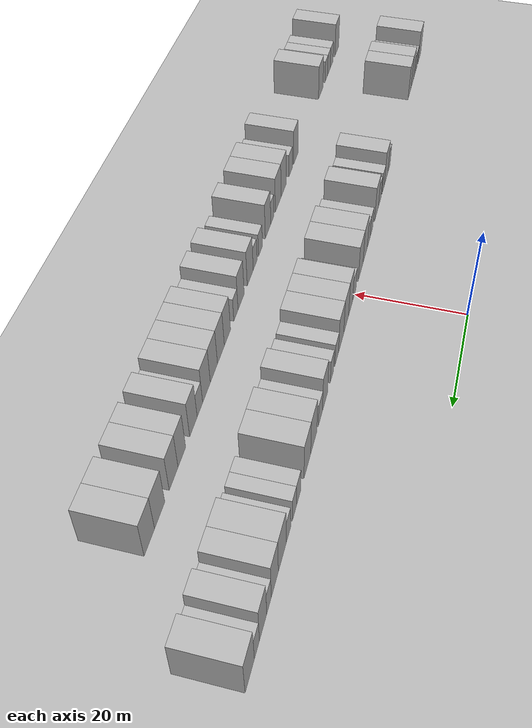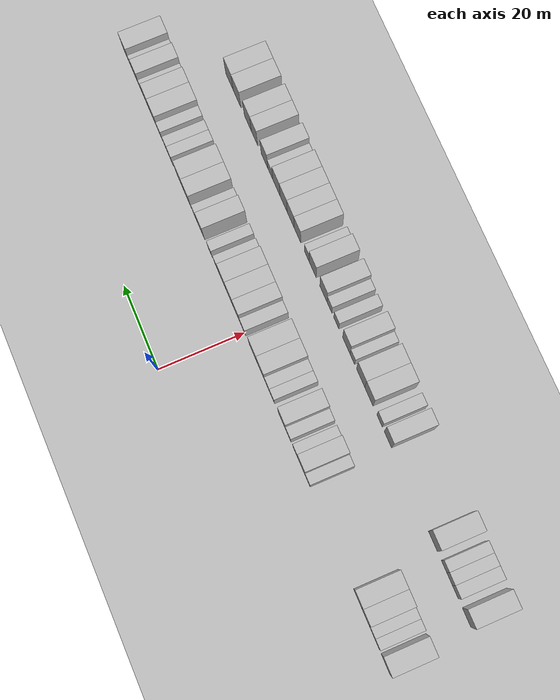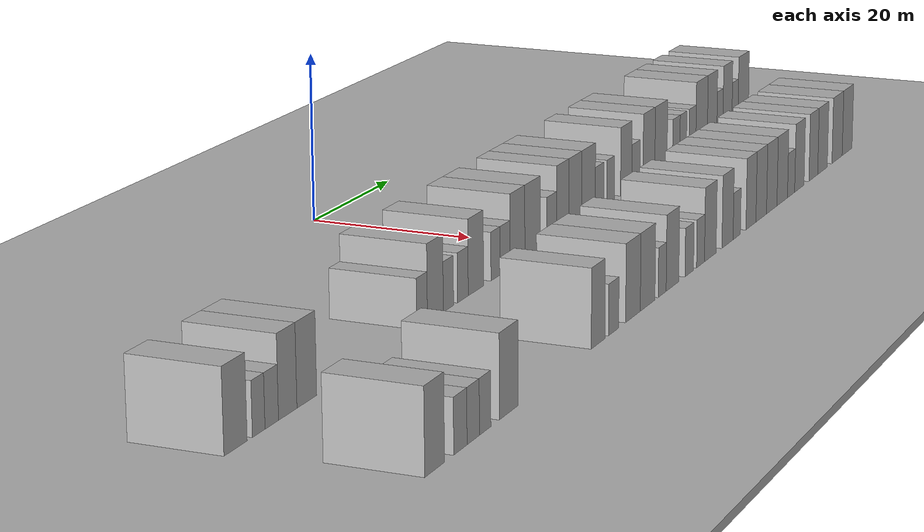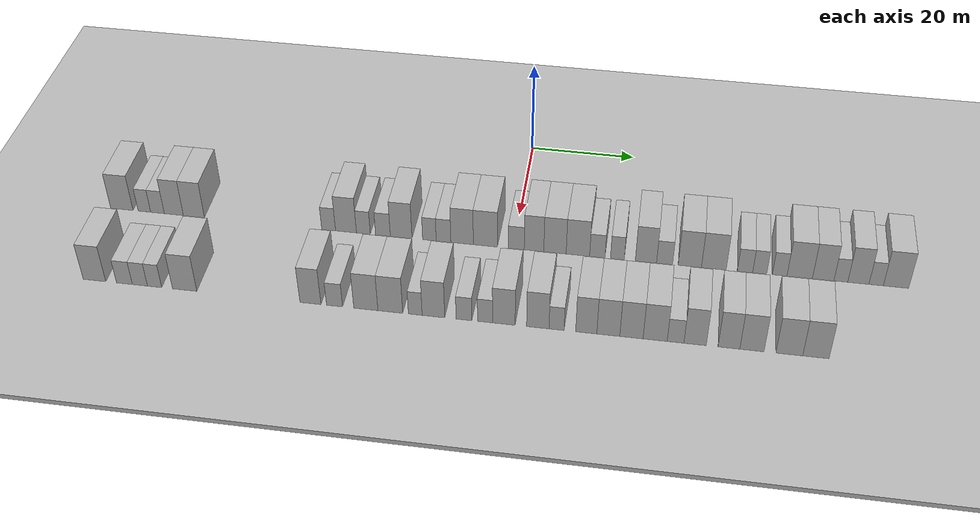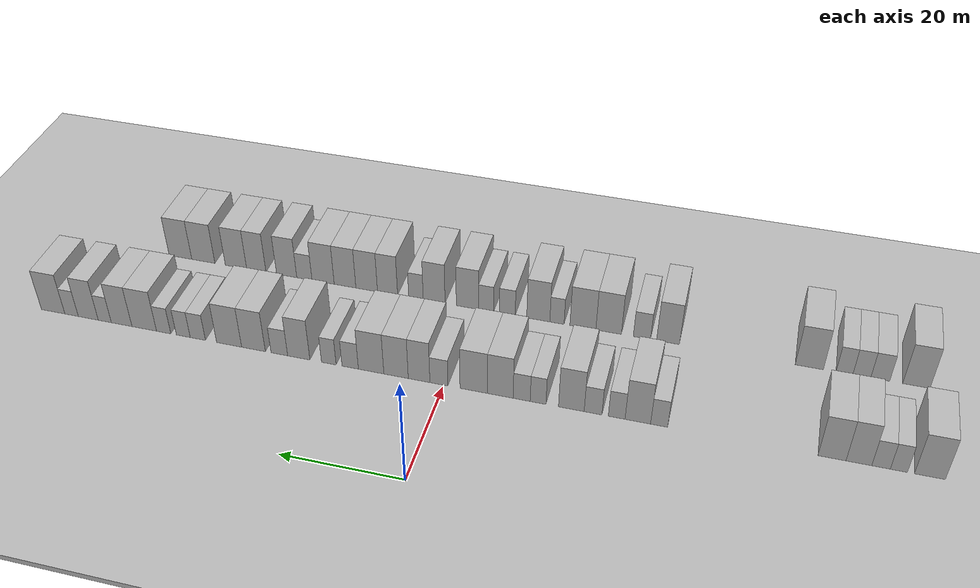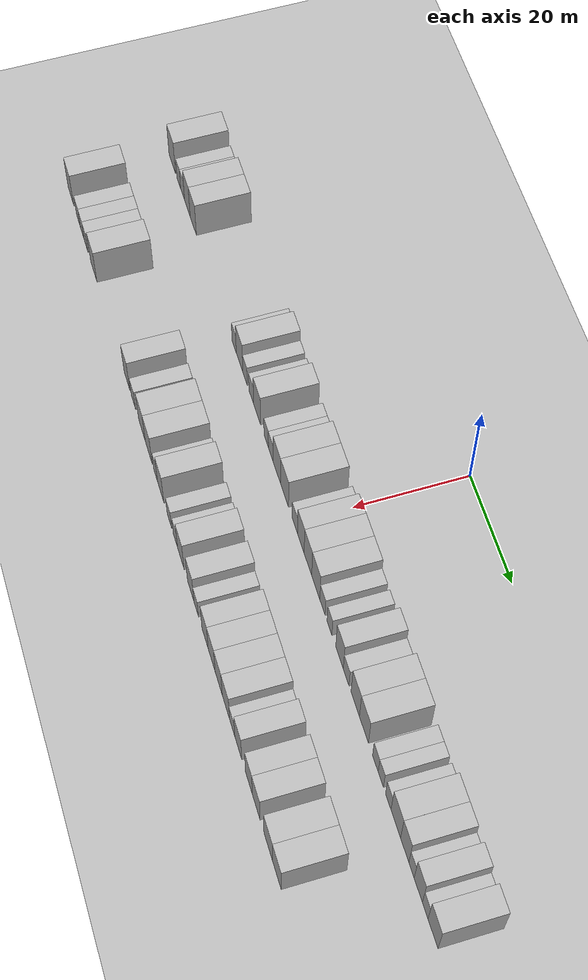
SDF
<sdf version="1.6">
 <world name="default">
  <include><name>ground_plane_1</name><uri>model://HANNAS_ground_plane</uri></include>
  <include>
   <name>ground_plane_2</name>
   <uri>model://HANNAS_ground_plane</uri>
   <pose>100 0 0  0 0 0</pose>
  </include>
  <model name="building_26">
   <static>1</static>
   <pose>25.0000 -74.6427 0 0.000000 0.000000 0.000000</pose>
   <link name="link">
    <pose>0 0 4.50 0 0 0</pose>
    <collision name="collision"><geometry><box><size>10.0000 4.3952 9.0000</size></box></geometry></collision>
    <visual name="visual">
     <cast_shadows>0</cast_shadows>
     <geometry><box><size>10.0000 4.3952 9.0000</size></box></geometry>
     <material>
      <script>
       <uri>model://HANNAS_wall/materials/scripts</uri>
       <uri>model://HANNAS_wall/materials/textures</uri>
       <name>vrc/HANNAS_wall</name>
      </script>
     </material>
    </visual>
   </link>
  </model>
  <model name="building_27">
   <static>1</static>
   <pose>25.0000 -70.2161 0 0.000000 0.000000 0.000000</pose>
   <link name="link">
    <pose>0 0 3.00 0 0 0</pose>
    <collision name="collision"><geometry><box><size>10.0000 2.4581 6.0000</size></box></geometry></collision>
    <visual name="visual">
     <cast_shadows>0</cast_shadows>
     <geometry><box><size>10.0000 2.4581 6.0000</size></box></geometry>
     <material>
      <script>
       <uri>model://HANNAS_wall/materials/scripts</uri>
       <uri>model://HANNAS_wall/materials/textures</uri>
       <name>vrc/HANNAS_wall</name>
      </script>
     </material>
    </visual>
   </link>
  </model>
  <model name="building_28">
   <static>1</static>
   <pose>25.0000 -67.6482 0 0.000000 0.000000 0.000000</pose>
   <link name="link">
    <pose>0 0 3.00 0 0 0</pose>
    <collision name="collision"><geometry><box><size>10.0000 2.6778 6.0000</size></box></geometry></collision>
    <visual name="visual">
     <cast_shadows>0</cast_shadows>
     <geometry><box><size>10.0000 2.6778 6.0000</size></box></geometry>
     <material>
      <script>
       <uri>model://HANNAS_wall/materials/scripts</uri>
       <uri>model://HANNAS_wall/materials/textures</uri>
       <name>vrc/HANNAS_wall</name>
      </script>
     </material>
    </visual>
   </link>
  </model>
  <model name="building_29">
   <static>1</static>
   <pose>25.0000 -64.4440 0 0.000000 0.000000 0.000000</pose>
   <link name="link">
    <pose>0 0 4.50 0 0 0</pose>
    <collision name="collision"><geometry><box><size>10.0000 3.7306 9.0000</size></box></geometry></collision>
    <visual name="visual">
     <cast_shadows>0</cast_shadows>
     <geometry><box><size>10.0000 3.7306 9.0000</size></box></geometry>
     <material>
      <script>
       <uri>model://HANNAS_wall/materials/scripts</uri>
       <uri>model://HANNAS_wall/materials/textures</uri>
       <name>vrc/HANNAS_wall</name>
      </script>
     </material>
    </visual>
   </link>
  </model>
  <model name="building_30">
   <static>1</static>
   <pose>25.0000 -60.5263 0 0.000000 0.000000 0.000000</pose>
   <link name="link">
    <pose>0 0 4.50 0 0 0</pose>
    <collision name="collision"><geometry><box><size>10.0000 4.1048 9.0000</size></box></geometry></collision>
    <visual name="visual">
     <cast_shadows>0</cast_shadows>
     <geometry><box><size>10.0000 4.1048 9.0000</size></box></geometry>
     <material>
      <script>
       <uri>model://HANNAS_wall/materials/scripts</uri>
       <uri>model://HANNAS_wall/materials/textures</uri>
       <name>vrc/HANNAS_wall</name>
      </script>
     </material>
    </visual>
   </link>
  </model>
  <model name="building_31">
   <static>1</static>
   <pose>25.0000 -34.5315 0 0.000000 0.000000 0.000000</pose>
   <link name="link">
    <pose>0 0 3.00 0 0 0</pose>
    <collision name="collision"><geometry><box><size>10.0000 2.6283 6.0000</size></box></geometry></collision>
    <visual name="visual">
     <cast_shadows>0</cast_shadows>
     <geometry><box><size>10.0000 2.6283 6.0000</size></box></geometry>
     <material>
      <script>
       <uri>model://HANNAS_wall/materials/scripts</uri>
       <uri>model://HANNAS_wall/materials/textures</uri>
       <name>vrc/HANNAS_wall</name>
      </script>
     </material>
    </visual>
   </link>
  </model>
  <model name="building_32">
   <static>1</static>
   <pose>25.0000 -31.2306 0 0.000000 0.000000 0.000000</pose>
   <link name="link">
    <pose>0 0 4.50 0 0 0</pose>
    <collision name="collision"><geometry><box><size>10.0000 3.9736 9.0000</size></box></geometry></collision>
    <visual name="visual">
     <cast_shadows>0</cast_shadows>
     <geometry><box><size>10.0000 3.9736 9.0000</size></box></geometry>
     <material>
      <script>
       <uri>model://HANNAS_wall/materials/scripts</uri>
       <uri>model://HANNAS_wall/materials/textures</uri>
       <name>vrc/HANNAS_wall</name>
      </script>
     </material>
    </visual>
   </link>
  </model>
  <model name="building_33">
   <static>1</static>
   <pose>25.0000 -27.9346 0 0.000000 0.000000 0.000000</pose>
   <link name="link">
    <pose>0 0 3.00 0 0 0</pose>
    <collision name="collision"><geometry><box><size>10.0000 2.6184 6.0000</size></box></geometry></collision>
    <visual name="visual">
     <cast_shadows>0</cast_shadows>
     <geometry><box><size>10.0000 2.6184 6.0000</size></box></geometry>
     <material>
      <script>
       <uri>model://HANNAS_wall/materials/scripts</uri>
       <uri>model://HANNAS_wall/materials/textures</uri>
       <name>vrc/HANNAS_wall</name>
      </script>
     </material>
    </visual>
   </link>
  </model>
  <model name="building_34">
   <static>1</static>
   <pose>25.0000 -24.2258 0 0.000000 0.000000 0.000000</pose>
   <link name="link">
    <pose>0 0 3.00 0 0 0</pose>
    <collision name="collision"><geometry><box><size>10.0000 2.7991 6.0000</size></box></geometry></collision>
    <visual name="visual">
     <cast_shadows>0</cast_shadows>
     <geometry><box><size>10.0000 2.7991 6.0000</size></box></geometry>
     <material>
      <script>
       <uri>model://HANNAS_wall/materials/scripts</uri>
       <uri>model://HANNAS_wall/materials/textures</uri>
       <name>vrc/HANNAS_wall</name>
      </script>
     </material>
    </visual>
   </link>
  </model>
  <model name="building_35">
   <static>1</static>
   <pose>25.0000 -20.7856 0 0.000000 0.000000 0.000000</pose>
   <link name="link">
    <pose>0 0 4.50 0 0 0</pose>
    <collision name="collision"><geometry><box><size>10.0000 4.0813 9.0000</size></box></geometry></collision>
    <visual name="visual">
     <cast_shadows>0</cast_shadows>
     <geometry><box><size>10.0000 4.0813 9.0000</size></box></geometry>
     <material>
      <script>
       <uri>model://HANNAS_wall/materials/scripts</uri>
       <uri>model://HANNAS_wall/materials/textures</uri>
       <name>vrc/HANNAS_wall</name>
      </script>
     </material>
    </visual>
   </link>
  </model>
  <model name="building_36">
   <static>1</static>
   <pose>25.0000 -15.4775 0 0.000000 0.000000 0.000000</pose>
   <link name="link">
    <pose>0 0 3.00 0 0 0</pose>
    <collision name="collision"><geometry><box><size>10.0000 2.5350 6.0000</size></box></geometry></collision>
    <visual name="visual">
     <cast_shadows>0</cast_shadows>
     <geometry><box><size>10.0000 2.5350 6.0000</size></box></geometry>
     <material>
      <script>
       <uri>model://HANNAS_wall/materials/scripts</uri>
       <uri>model://HANNAS_wall/materials/textures</uri>
       <name>vrc/HANNAS_wall</name>
      </script>
     </material>
    </visual>
   </link>
  </model>
  <model name="building_37">
   <static>1</static>
   <pose>25.0000 -12.8345 0 0.000000 0.000000 0.000000</pose>
   <link name="link">
    <pose>0 0 3.00 0 0 0</pose>
    <collision name="collision"><geometry><box><size>10.0000 2.7509 6.0000</size></box></geometry></collision>
    <visual name="visual">
     <cast_shadows>0</cast_shadows>
     <geometry><box><size>10.0000 2.7509 6.0000</size></box></geometry>
     <material>
      <script>
       <uri>model://HANNAS_wall/materials/scripts</uri>
       <uri>model://HANNAS_wall/materials/textures</uri>
       <name>vrc/HANNAS_wall</name>
      </script>
     </material>
    </visual>
   </link>
  </model>
  <model name="building_38">
   <static>1</static>
   <pose>25.0000 -9.3605 0 0.000000 0.000000 0.000000</pose>
   <link name="link">
    <pose>0 0 4.50 0 0 0</pose>
    <collision name="collision"><geometry><box><size>10.0000 4.1972 9.0000</size></box></geometry></collision>
    <visual name="visual">
     <cast_shadows>0</cast_shadows>
     <geometry><box><size>10.0000 4.1972 9.0000</size></box></geometry>
     <material>
      <script>
       <uri>model://HANNAS_wall/materials/scripts</uri>
       <uri>model://HANNAS_wall/materials/textures</uri>
       <name>vrc/HANNAS_wall</name>
      </script>
     </material>
    </visual>
   </link>
  </model>
  <model name="building_39">
   <static>1</static>
   <pose>25.0000 -5.0282 0 0.000000 0.000000 0.000000</pose>
   <link name="link">
    <pose>0 0 4.50 0 0 0</pose>
    <collision name="collision"><geometry><box><size>10.0000 4.4674 9.0000</size></box></geometry></collision>
    <visual name="visual">
     <cast_shadows>0</cast_shadows>
     <geometry><box><size>10.0000 4.4674 9.0000</size></box></geometry>
     <material>
      <script>
       <uri>model://HANNAS_wall/materials/scripts</uri>
       <uri>model://HANNAS_wall/materials/textures</uri>
       <name>vrc/HANNAS_wall</name>
      </script>
     </material>
    </visual>
   </link>
  </model>
  <model name="building_40">
   <static>1</static>
   <pose>25.0000 0.6936 0 0.000000 0.000000 0.000000</pose>
   <link name="link">
    <pose>0 0 3.00 0 0 0</pose>
    <collision name="collision"><geometry><box><size>10.0000 2.9762 6.0000</size></box></geometry></collision>
    <visual name="visual">
     <cast_shadows>0</cast_shadows>
     <geometry><box><size>10.0000 2.9762 6.0000</size></box></geometry>
     <material>
      <script>
       <uri>model://HANNAS_wall/materials/scripts</uri>
       <uri>model://HANNAS_wall/materials/textures</uri>
       <name>vrc/HANNAS_wall</name>
      </script>
     </material>
    </visual>
   </link>
  </model>
  <model name="building_41">
   <static>1</static>
   <pose>25.0000 3.9827 0 0.000000 0.000000 0.000000</pose>
   <link name="link">
    <pose>0 0 4.50 0 0 0</pose>
    <collision name="collision"><geometry><box><size>10.0000 3.6018 9.0000</size></box></geometry></collision>
    <visual name="visual">
     <cast_shadows>0</cast_shadows>
     <geometry><box><size>10.0000 3.6018 9.0000</size></box></geometry>
     <material>
      <script>
       <uri>model://HANNAS_wall/materials/scripts</uri>
       <uri>model://HANNAS_wall/materials/textures</uri>
       <name>vrc/HANNAS_wall</name>
      </script>
     </material>
    </visual>
   </link>
  </model>
  <model name="building_42">
   <static>1</static>
   <pose>25.0000 7.8379 0 0.000000 0.000000 0.000000</pose>
   <link name="link">
    <pose>0 0 4.50 0 0 0</pose>
    <collision name="collision"><geometry><box><size>10.0000 4.1087 9.0000</size></box></geometry></collision>
    <visual name="visual">
     <cast_shadows>0</cast_shadows>
     <geometry><box><size>10.0000 4.1087 9.0000</size></box></geometry>
     <material>
      <script>
       <uri>model://HANNAS_wall/materials/scripts</uri>
       <uri>model://HANNAS_wall/materials/textures</uri>
       <name>vrc/HANNAS_wall</name>
      </script>
     </material>
    </visual>
   </link>
  </model>
  <model name="building_43">
   <static>1</static>
   <pose>25.0000 12.0484 0 0.000000 0.000000 0.000000</pose>
   <link name="link">
    <pose>0 0 4.50 0 0 0</pose>
    <collision name="collision"><geometry><box><size>10.0000 4.3123 9.0000</size></box></geometry></collision>
    <visual name="visual">
     <cast_shadows>0</cast_shadows>
     <geometry><box><size>10.0000 4.3123 9.0000</size></box></geometry>
     <material>
      <script>
       <uri>model://HANNAS_wall/materials/scripts</uri>
       <uri>model://HANNAS_wall/materials/textures</uri>
       <name>vrc/HANNAS_wall</name>
      </script>
     </material>
    </visual>
   </link>
  </model>
  <model name="building_44">
   <static>1</static>
   <pose>25.0000 15.6020 0 0.000000 0.000000 0.000000</pose>
   <link name="link">
    <pose>0 0 3.00 0 0 0</pose>
    <collision name="collision"><geometry><box><size>10.0000 2.7947 6.0000</size></box></geometry></collision>
    <visual name="visual">
     <cast_shadows>0</cast_shadows>
     <geometry><box><size>10.0000 2.7947 6.0000</size></box></geometry>
     <material>
      <script>
       <uri>model://HANNAS_wall/materials/scripts</uri>
       <uri>model://HANNAS_wall/materials/textures</uri>
       <name>vrc/HANNAS_wall</name>
      </script>
     </material>
    </visual>
   </link>
  </model>
  <model name="building_45">
   <static>1</static>
   <pose>25.0000 19.2593 0 0.000000 0.000000 0.000000</pose>
   <link name="link">
    <pose>0 0 3.00 0 0 0</pose>
    <collision name="collision"><geometry><box><size>10.0000 2.5199 6.0000</size></box></geometry></collision>
    <visual name="visual">
     <cast_shadows>0</cast_shadows>
     <geometry><box><size>10.0000 2.5199 6.0000</size></box></geometry>
     <material>
      <script>
       <uri>model://HANNAS_wall/materials/scripts</uri>
       <uri>model://HANNAS_wall/materials/textures</uri>
       <name>vrc/HANNAS_wall</name>
      </script>
     </material>
    </visual>
   </link>
  </model>
  <model name="building_46">
   <static>1</static>
   <pose>25.0000 24.4487 0 0.000000 0.000000 0.000000</pose>
   <link name="link">
    <pose>0 0 4.50 0 0 0</pose>
    <collision name="collision"><geometry><box><size>10.0000 3.8589 9.0000</size></box></geometry></collision>
    <visual name="visual">
     <cast_shadows>0</cast_shadows>
     <geometry><box><size>10.0000 3.8589 9.0000</size></box></geometry>
     <material>
      <script>
       <uri>model://HANNAS_wall/materials/scripts</uri>
       <uri>model://HANNAS_wall/materials/textures</uri>
       <name>vrc/HANNAS_wall</name>
      </script>
     </material>
    </visual>
   </link>
  </model>
  <model name="building_47">
   <static>1</static>
   <pose>25.0000 27.8278 0 0.000000 0.000000 0.000000</pose>
   <link name="link">
    <pose>0 0 3.00 0 0 0</pose>
    <collision name="collision"><geometry><box><size>10.0000 2.8993 6.0000</size></box></geometry></collision>
    <visual name="visual">
     <cast_shadows>0</cast_shadows>
     <geometry><box><size>10.0000 2.8993 6.0000</size></box></geometry>
     <material>
      <script>
       <uri>model://HANNAS_wall/materials/scripts</uri>
       <uri>model://HANNAS_wall/materials/textures</uri>
       <name>vrc/HANNAS_wall</name>
      </script>
     </material>
    </visual>
   </link>
  </model>
  <model name="building_48">
   <static>1</static>
   <pose>25.0000 32.3691 0 0.000000 0.000000 0.000000</pose>
   <link name="link">
    <pose>0 0 4.50 0 0 0</pose>
    <collision name="collision"><geometry><box><size>10.0000 4.1834 9.0000</size></box></geometry></collision>
    <visual name="visual">
     <cast_shadows>0</cast_shadows>
     <geometry><box><size>10.0000 4.1834 9.0000</size></box></geometry>
     <material>
      <script>
       <uri>model://HANNAS_wall/materials/scripts</uri>
       <uri>model://HANNAS_wall/materials/textures</uri>
       <name>vrc/HANNAS_wall</name>
      </script>
     </material>
    </visual>
   </link>
  </model>
  <model name="building_49">
   <static>1</static>
   <pose>25.0000 36.6838 0 0.000000 0.000000 0.000000</pose>
   <link name="link">
    <pose>0 0 4.50 0 0 0</pose>
    <collision name="collision"><geometry><box><size>10.0000 4.4460 9.0000</size></box></geometry></collision>
    <visual name="visual">
     <cast_shadows>0</cast_shadows>
     <geometry><box><size>10.0000 4.4460 9.0000</size></box></geometry>
     <material>
      <script>
       <uri>model://HANNAS_wall/materials/scripts</uri>
       <uri>model://HANNAS_wall/materials/textures</uri>
       <name>vrc/HANNAS_wall</name>
      </script>
     </material>
    </visual>
   </link>
  </model>
  <model name="building_50">
   <static>1</static>
   <pose>25.0000 42.2739 0 0.000000 0.000000 0.000000</pose>
   <link name="link">
    <pose>0 0 3.00 0 0 0</pose>
    <collision name="collision"><geometry><box><size>10.0000 2.7342 6.0000</size></box></geometry></collision>
    <visual name="visual">
     <cast_shadows>0</cast_shadows>
     <geometry><box><size>10.0000 2.7342 6.0000</size></box></geometry>
     <material>
      <script>
       <uri>model://HANNAS_wall/materials/scripts</uri>
       <uri>model://HANNAS_wall/materials/textures</uri>
       <name>vrc/HANNAS_wall</name>
      </script>
     </material>
    </visual>
   </link>
  </model>
  <model name="building_51">
   <static>1</static>
   <pose>25.0000 44.8899 0 0.000000 0.000000 0.000000</pose>
   <link name="link">
    <pose>0 0 3.00 0 0 0</pose>
    <collision name="collision"><geometry><box><size>10.0000 2.4979 6.0000</size></box></geometry></collision>
    <visual name="visual">
     <cast_shadows>0</cast_shadows>
     <geometry><box><size>10.0000 2.4979 6.0000</size></box></geometry>
     <material>
      <script>
       <uri>model://HANNAS_wall/materials/scripts</uri>
       <uri>model://HANNAS_wall/materials/textures</uri>
       <name>vrc/HANNAS_wall</name>
      </script>
     </material>
    </visual>
   </link>
  </model>
  <model name="building_52">
   <static>1</static>
   <pose>25.0000 48.4372 0 0.000000 0.000000 0.000000</pose>
   <link name="link">
    <pose>0 0 3.00 0 0 0</pose>
    <collision name="collision"><geometry><box><size>10.0000 2.5965 6.0000</size></box></geometry></collision>
    <visual name="visual">
     <cast_shadows>0</cast_shadows>
     <geometry><box><size>10.0000 2.5965 6.0000</size></box></geometry>
     <material>
      <script>
       <uri>model://HANNAS_wall/materials/scripts</uri>
       <uri>model://HANNAS_wall/materials/textures</uri>
       <name>vrc/HANNAS_wall</name>
      </script>
     </material>
    </visual>
   </link>
  </model>
  <model name="building_53">
   <static>1</static>
   <pose>25.0000 51.9839 0 0.000000 0.000000 0.000000</pose>
   <link name="link">
    <pose>0 0 4.50 0 0 0</pose>
    <collision name="collision"><geometry><box><size>10.0000 4.4969 9.0000</size></box></geometry></collision>
    <visual name="visual">
     <cast_shadows>0</cast_shadows>
     <geometry><box><size>10.0000 4.4969 9.0000</size></box></geometry>
     <material>
      <script>
       <uri>model://HANNAS_wall/materials/scripts</uri>
       <uri>model://HANNAS_wall/materials/textures</uri>
       <name>vrc/HANNAS_wall</name>
      </script>
     </material>
    </visual>
   </link>
  </model>
  <model name="building_54">
   <static>1</static>
   <pose>25.0000 56.1350 0 0.000000 0.000000 0.000000</pose>
   <link name="link">
    <pose>0 0 4.50 0 0 0</pose>
    <collision name="collision"><geometry><box><size>10.0000 3.8052 9.0000</size></box></geometry></collision>
    <visual name="visual">
     <cast_shadows>0</cast_shadows>
     <geometry><box><size>10.0000 3.8052 9.0000</size></box></geometry>
     <material>
      <script>
       <uri>model://HANNAS_wall/materials/scripts</uri>
       <uri>model://HANNAS_wall/materials/textures</uri>
       <name>vrc/HANNAS_wall</name>
      </script>
     </material>
    </visual>
   </link>
  </model>
  <model name="building_55">
   <static>1</static>
   <pose>25.0000 59.2513 0 0.000000 0.000000 0.000000</pose>
   <link name="link">
    <pose>0 0 3.00 0 0 0</pose>
    <collision name="collision"><geometry><box><size>10.0000 2.4275 6.0000</size></box></geometry></collision>
    <visual name="visual">
     <cast_shadows>0</cast_shadows>
     <geometry><box><size>10.0000 2.4275 6.0000</size></box></geometry>
     <material>
      <script>
       <uri>model://HANNAS_wall/materials/scripts</uri>
       <uri>model://HANNAS_wall/materials/textures</uri>
       <name>vrc/HANNAS_wall</name>
      </script>
     </material>
    </visual>
   </link>
  </model>
  <model name="building_56">
   <static>1</static>
   <pose>25.0000 62.3258 0 0.000000 0.000000 0.000000</pose>
   <link name="link">
    <pose>0 0 4.50 0 0 0</pose>
    <collision name="collision"><geometry><box><size>10.0000 3.7214 9.0000</size></box></geometry></collision>
    <visual name="visual">
     <cast_shadows>0</cast_shadows>
     <geometry><box><size>10.0000 3.7214 9.0000</size></box></geometry>
     <material>
      <script>
       <uri>model://HANNAS_wall/materials/scripts</uri>
       <uri>model://HANNAS_wall/materials/textures</uri>
       <name>vrc/HANNAS_wall</name>
      </script>
     </material>
    </visual>
   </link>
  </model>
  <model name="building_57">
   <static>1</static>
   <pose>25.0000 65.4446 0 0.000000 0.000000 0.000000</pose>
   <link name="link">
    <pose>0 0 3.00 0 0 0</pose>
    <collision name="collision"><geometry><box><size>10.0000 2.5163 6.0000</size></box></geometry></collision>
    <visual name="visual">
     <cast_shadows>0</cast_shadows>
     <geometry><box><size>10.0000 2.5163 6.0000</size></box></geometry>
     <material>
      <script>
       <uri>model://HANNAS_wall/materials/scripts</uri>
       <uri>model://HANNAS_wall/materials/textures</uri>
       <name>vrc/HANNAS_wall</name>
      </script>
     </material>
    </visual>
   </link>
  </model>
  <model name="building_58">
   <static>1</static>
   <pose>25.0000 68.9086 0 0.000000 0.000000 0.000000</pose>
   <link name="link">
    <pose>0 0 4.50 0 0 0</pose>
    <collision name="collision"><geometry><box><size>10.0000 4.4116 9.0000</size></box></geometry></collision>
    <visual name="visual">
     <cast_shadows>0</cast_shadows>
     <geometry><box><size>10.0000 4.4116 9.0000</size></box></geometry>
     <material>
      <script>
       <uri>model://HANNAS_wall/materials/scripts</uri>
       <uri>model://HANNAS_wall/materials/textures</uri>
       <name>vrc/HANNAS_wall</name>
      </script>
     </material>
    </visual>
   </link>
  </model>
  <model name="building_122">
   <static>1</static>
   <pose>44.0000 -72.8353 0 0.000000 0.000000 0.000000</pose>
   <link name="link">
    <pose>0 0 4.50 0 0 0</pose>
    <collision name="collision"><geometry><box><size>10.0000 4.2082 9.0000</size></box></geometry></collision>
    <visual name="visual">
     <cast_shadows>0</cast_shadows>
     <geometry><box><size>10.0000 4.2082 9.0000</size></box></geometry>
     <material>
      <script>
       <uri>model://HANNAS_wall/materials/scripts</uri>
       <uri>model://HANNAS_wall/materials/textures</uri>
       <name>vrc/HANNAS_wall</name>
      </script>
     </material>
    </visual>
   </link>
  </model>
  <model name="building_123">
   <static>1</static>
   <pose>44.0000 -67.2592 0 0.000000 0.000000 0.000000</pose>
   <link name="link">
    <pose>0 0 3.00 0 0 0</pose>
    <collision name="collision"><geometry><box><size>10.0000 2.9440 6.0000</size></box></geometry></collision>
    <visual name="visual">
     <cast_shadows>0</cast_shadows>
     <geometry><box><size>10.0000 2.9440 6.0000</size></box></geometry>
     <material>
      <script>
       <uri>model://HANNAS_wall/materials/scripts</uri>
       <uri>model://HANNAS_wall/materials/textures</uri>
       <name>vrc/HANNAS_wall</name>
      </script>
     </material>
    </visual>
   </link>
  </model>
  <model name="building_124">
   <static>1</static>
   <pose>44.0000 -64.3868 0 0.000000 0.000000 0.000000</pose>
   <link name="link">
    <pose>0 0 3.00 0 0 0</pose>
    <collision name="collision"><geometry><box><size>10.0000 2.8008 6.0000</size></box></geometry></collision>
    <visual name="visual">
     <cast_shadows>0</cast_shadows>
     <geometry><box><size>10.0000 2.8008 6.0000</size></box></geometry>
     <material>
      <script>
       <uri>model://HANNAS_wall/materials/scripts</uri>
       <uri>model://HANNAS_wall/materials/textures</uri>
       <name>vrc/HANNAS_wall</name>
      </script>
     </material>
    </visual>
   </link>
  </model>
  <model name="building_125">
   <static>1</static>
   <pose>44.0000 -61.6727 0 0.000000 0.000000 0.000000</pose>
   <link name="link">
    <pose>0 0 3.00 0 0 0</pose>
    <collision name="collision"><geometry><box><size>10.0000 2.6275 6.0000</size></box></geometry></collision>
    <visual name="visual">
     <cast_shadows>0</cast_shadows>
     <geometry><box><size>10.0000 2.6275 6.0000</size></box></geometry>
     <material>
      <script>
       <uri>model://HANNAS_wall/materials/scripts</uri>
       <uri>model://HANNAS_wall/materials/textures</uri>
       <name>vrc/HANNAS_wall</name>
      </script>
     </material>
    </visual>
   </link>
  </model>
  <model name="building_126">
   <static>1</static>
   <pose>44.0000 -56.1247 0 0.000000 0.000000 0.000000</pose>
   <link name="link">
    <pose>0 0 4.50 0 0 0</pose>
    <collision name="collision"><geometry><box><size>10.0000 4.4686 9.0000</size></box></geometry></collision>
    <visual name="visual">
     <cast_shadows>0</cast_shadows>
     <geometry><box><size>10.0000 4.4686 9.0000</size></box></geometry>
     <material>
      <script>
       <uri>model://HANNAS_wall/materials/scripts</uri>
       <uri>model://HANNAS_wall/materials/textures</uri>
       <name>vrc/HANNAS_wall</name>
      </script>
     </material>
    </visual>
   </link>
  </model>
  <model name="building_127">
   <static>1</static>
   <pose>44.0000 -33.1978 0 0.000000 0.000000 0.000000</pose>
   <link name="link">
    <pose>0 0 4.50 0 0 0</pose>
    <collision name="collision"><geometry><box><size>10.0000 3.7950 9.0000</size></box></geometry></collision>
    <visual name="visual">
     <cast_shadows>0</cast_shadows>
     <geometry><box><size>10.0000 3.7950 9.0000</size></box></geometry>
     <material>
      <script>
       <uri>model://HANNAS_wall/materials/scripts</uri>
       <uri>model://HANNAS_wall/materials/textures</uri>
       <name>vrc/HANNAS_wall</name>
      </script>
     </material>
    </visual>
   </link>
  </model>
  <model name="building_128">
   <static>1</static>
   <pose>44.0000 -28.8617 0 0.000000 0.000000 0.000000</pose>
   <link name="link">
    <pose>0 0 3.00 0 0 0</pose>
    <collision name="collision"><geometry><box><size>10.0000 2.8772 6.0000</size></box></geometry></collision>
    <visual name="visual">
     <cast_shadows>0</cast_shadows>
     <geometry><box><size>10.0000 2.8772 6.0000</size></box></geometry>
     <material>
      <script>
       <uri>model://HANNAS_wall/materials/scripts</uri>
       <uri>model://HANNAS_wall/materials/textures</uri>
       <name>vrc/HANNAS_wall</name>
      </script>
     </material>
    </visual>
   </link>
  </model>
  <model name="building_129">
   <static>1</static>
   <pose>44.0000 -23.2683 0 0.000000 0.000000 0.000000</pose>
   <link name="link">
    <pose>0 0 4.50 0 0 0</pose>
    <collision name="collision"><geometry><box><size>10.0000 4.3095 9.0000</size></box></geometry></collision>
    <visual name="visual">
     <cast_shadows>0</cast_shadows>
     <geometry><box><size>10.0000 4.3095 9.0000</size></box></geometry>
     <material>
      <script>
       <uri>model://HANNAS_wall/materials/scripts</uri>
       <uri>model://HANNAS_wall/materials/textures</uri>
       <name>vrc/HANNAS_wall</name>
      </script>
     </material>
    </visual>
   </link>
  </model>
  <model name="building_130">
   <static>1</static>
   <pose>44.0000 -18.9022 0 0.000000 0.000000 0.000000</pose>
   <link name="link">
    <pose>0 0 4.50 0 0 0</pose>
    <collision name="collision"><geometry><box><size>10.0000 4.4229 9.0000</size></box></geometry></collision>
    <visual name="visual">
     <cast_shadows>0</cast_shadows>
     <geometry><box><size>10.0000 4.4229 9.0000</size></box></geometry>
     <material>
      <script>
       <uri>model://HANNAS_wall/materials/scripts</uri>
       <uri>model://HANNAS_wall/materials/textures</uri>
       <name>vrc/HANNAS_wall</name>
      </script>
     </material>
    </visual>
   </link>
  </model>
  <model name="building_131">
   <static>1</static>
   <pose>44.0000 -14.4668 0 0.000000 0.000000 0.000000</pose>
   <link name="link">
    <pose>0 0 3.00 0 0 0</pose>
    <collision name="collision"><geometry><box><size>10.0000 2.4480 6.0000</size></box></geometry></collision>
    <visual name="visual">
     <cast_shadows>0</cast_shadows>
     <geometry><box><size>10.0000 2.4480 6.0000</size></box></geometry>
     <material>
      <script>
       <uri>model://HANNAS_wall/materials/scripts</uri>
       <uri>model://HANNAS_wall/materials/textures</uri>
       <name>vrc/HANNAS_wall</name>
      </script>
     </material>
    </visual>
   </link>
  </model>
  <model name="building_132">
   <static>1</static>
   <pose>44.0000 -11.2497 0 0.000000 0.000000 0.000000</pose>
   <link name="link">
    <pose>0 0 4.50 0 0 0</pose>
    <collision name="collision"><geometry><box><size>10.0000 3.9861 9.0000</size></box></geometry></collision>
    <visual name="visual">
     <cast_shadows>0</cast_shadows>
     <geometry><box><size>10.0000 3.9861 9.0000</size></box></geometry>
     <material>
      <script>
       <uri>model://HANNAS_wall/materials/scripts</uri>
       <uri>model://HANNAS_wall/materials/textures</uri>
       <name>vrc/HANNAS_wall</name>
      </script>
     </material>
    </visual>
   </link>
  </model>
  <model name="building_133">
   <static>1</static>
   <pose>44.0000 -5.8729 0 0.000000 0.000000 0.000000</pose>
   <link name="link">
    <pose>0 0 3.00 0 0 0</pose>
    <collision name="collision"><geometry><box><size>10.0000 2.7675 6.0000</size></box></geometry></collision>
    <visual name="visual">
     <cast_shadows>0</cast_shadows>
     <geometry><box><size>10.0000 2.7675 6.0000</size></box></geometry>
     <material>
      <script>
       <uri>model://HANNAS_wall/materials/scripts</uri>
       <uri>model://HANNAS_wall/materials/textures</uri>
       <name>vrc/HANNAS_wall</name>
      </script>
     </material>
    </visual>
   </link>
  </model>
  <model name="building_134">
   <static>1</static>
   <pose>44.0000 -2.1772 0 0.000000 0.000000 0.000000</pose>
   <link name="link">
    <pose>0 0 3.00 0 0 0</pose>
    <collision name="collision"><geometry><box><size>10.0000 2.6240 6.0000</size></box></geometry></collision>
    <visual name="visual">
     <cast_shadows>0</cast_shadows>
     <geometry><box><size>10.0000 2.6240 6.0000</size></box></geometry>
     <material>
      <script>
       <uri>model://HANNAS_wall/materials/scripts</uri>
       <uri>model://HANNAS_wall/materials/textures</uri>
       <name>vrc/HANNAS_wall</name>
      </script>
     </material>
    </visual>
   </link>
  </model>
  <model name="building_135">
   <static>1</static>
   <pose>44.0000 1.1125 0 0.000000 0.000000 0.000000</pose>
   <link name="link">
    <pose>0 0 4.50 0 0 0</pose>
    <collision name="collision"><geometry><box><size>10.0000 3.9554 9.0000</size></box></geometry></collision>
    <visual name="visual">
     <cast_shadows>0</cast_shadows>
     <geometry><box><size>10.0000 3.9554 9.0000</size></box></geometry>
     <material>
      <script>
       <uri>model://HANNAS_wall/materials/scripts</uri>
       <uri>model://HANNAS_wall/materials/textures</uri>
       <name>vrc/HANNAS_wall</name>
      </script>
     </material>
    </visual>
   </link>
  </model>
  <model name="building_136">
   <static>1</static>
   <pose>44.0000 7.0386 0 0.000000 0.000000 0.000000</pose>
   <link name="link">
    <pose>0 0 4.50 0 0 0</pose>
    <collision name="collision"><geometry><box><size>10.0000 3.8967 9.0000</size></box></geometry></collision>
    <visual name="visual">
     <cast_shadows>0</cast_shadows>
     <geometry><box><size>10.0000 3.8967 9.0000</size></box></geometry>
     <material>
      <script>
       <uri>model://HANNAS_wall/materials/scripts</uri>
       <uri>model://HANNAS_wall/materials/textures</uri>
       <name>vrc/HANNAS_wall</name>
      </script>
     </material>
    </visual>
   </link>
  </model>
  <model name="building_137">
   <static>1</static>
   <pose>44.0000 10.2930 0 0.000000 0.000000 0.000000</pose>
   <link name="link">
    <pose>0 0 3.00 0 0 0</pose>
    <collision name="collision"><geometry><box><size>10.0000 2.6122 6.0000</size></box></geometry></collision>
    <visual name="visual">
     <cast_shadows>0</cast_shadows>
     <geometry><box><size>10.0000 2.6122 6.0000</size></box></geometry>
     <material>
      <script>
       <uri>model://HANNAS_wall/materials/scripts</uri>
       <uri>model://HANNAS_wall/materials/textures</uri>
       <name>vrc/HANNAS_wall</name>
      </script>
     </material>
    </visual>
   </link>
  </model>
  <model name="building_138">
   <static>1</static>
   <pose>44.0000 15.4236 0 0.000000 0.000000 0.000000</pose>
   <link name="link">
    <pose>0 0 4.50 0 0 0</pose>
    <collision name="collision"><geometry><box><size>10.0000 3.6492 9.0000</size></box></geometry></collision>
    <visual name="visual">
     <cast_shadows>0</cast_shadows>
     <geometry><box><size>10.0000 3.6492 9.0000</size></box></geometry>
     <material>
      <script>
       <uri>model://HANNAS_wall/materials/scripts</uri>
       <uri>model://HANNAS_wall/materials/textures</uri>
       <name>vrc/HANNAS_wall</name>
      </script>
     </material>
    </visual>
   </link>
  </model>
  <model name="building_139">
   <static>1</static>
   <pose>44.0000 19.2238 0 0.000000 0.000000 0.000000</pose>
   <link name="link">
    <pose>0 0 4.50 0 0 0</pose>
    <collision name="collision"><geometry><box><size>10.0000 3.9513 9.0000</size></box></geometry></collision>
    <visual name="visual">
     <cast_shadows>0</cast_shadows>
     <geometry><box><size>10.0000 3.9513 9.0000</size></box></geometry>
     <material>
      <script>
       <uri>model://HANNAS_wall/materials/scripts</uri>
       <uri>model://HANNAS_wall/materials/textures</uri>
       <name>vrc/HANNAS_wall</name>
      </script>
     </material>
    </visual>
   </link>
  </model>
  <model name="building_140">
   <static>1</static>
   <pose>44.0000 23.1921 0 0.000000 0.000000 0.000000</pose>
   <link name="link">
    <pose>0 0 4.50 0 0 0</pose>
    <collision name="collision"><geometry><box><size>10.0000 3.9852 9.0000</size></box></geometry></collision>
    <visual name="visual">
     <cast_shadows>0</cast_shadows>
     <geometry><box><size>10.0000 3.9852 9.0000</size></box></geometry>
     <material>
      <script>
       <uri>model://HANNAS_wall/materials/scripts</uri>
       <uri>model://HANNAS_wall/materials/textures</uri>
       <name>vrc/HANNAS_wall</name>
      </script>
     </material>
    </visual>
   </link>
  </model>
  <model name="building_141">
   <static>1</static>
   <pose>44.0000 27.2405 0 0.000000 0.000000 0.000000</pose>
   <link name="link">
    <pose>0 0 4.50 0 0 0</pose>
    <collision name="collision"><geometry><box><size>10.0000 4.1117 9.0000</size></box></geometry></collision>
    <visual name="visual">
     <cast_shadows>0</cast_shadows>
     <geometry><box><size>10.0000 4.1117 9.0000</size></box></geometry>
     <material>
      <script>
       <uri>model://HANNAS_wall/materials/scripts</uri>
       <uri>model://HANNAS_wall/materials/textures</uri>
       <name>vrc/HANNAS_wall</name>
      </script>
     </material>
    </visual>
   </link>
  </model>
  <model name="building_142">
   <static>1</static>
   <pose>44.0000 30.7181 0 0.000000 0.000000 0.000000</pose>
   <link name="link">
    <pose>0 0 3.00 0 0 0</pose>
    <collision name="collision"><geometry><box><size>10.0000 2.8433 6.0000</size></box></geometry></collision>
    <visual name="visual">
     <cast_shadows>0</cast_shadows>
     <geometry><box><size>10.0000 2.8433 6.0000</size></box></geometry>
     <material>
      <script>
       <uri>model://HANNAS_wall/materials/scripts</uri>
       <uri>model://HANNAS_wall/materials/textures</uri>
       <name>vrc/HANNAS_wall</name>
      </script>
     </material>
    </visual>
   </link>
  </model>
  <model name="building_143">
   <static>1</static>
   <pose>44.0000 34.0332 0 0.000000 0.000000 0.000000</pose>
   <link name="link">
    <pose>0 0 4.50 0 0 0</pose>
    <collision name="collision"><geometry><box><size>10.0000 3.7869 9.0000</size></box></geometry></collision>
    <visual name="visual">
     <cast_shadows>0</cast_shadows>
     <geometry><box><size>10.0000 3.7869 9.0000</size></box></geometry>
     <material>
      <script>
       <uri>model://HANNAS_wall/materials/scripts</uri>
       <uri>model://HANNAS_wall/materials/textures</uri>
       <name>vrc/HANNAS_wall</name>
      </script>
     </material>
    </visual>
   </link>
  </model>
  <model name="building_144">
   <static>1</static>
   <pose>44.0000 39.7575 0 0.000000 0.000000 0.000000</pose>
   <link name="link">
    <pose>0 0 4.50 0 0 0</pose>
    <collision name="collision"><geometry><box><size>10.0000 3.6618 9.0000</size></box></geometry></collision>
    <visual name="visual">
     <cast_shadows>0</cast_shadows>
     <geometry><box><size>10.0000 3.6618 9.0000</size></box></geometry>
     <material>
      <script>
       <uri>model://HANNAS_wall/materials/scripts</uri>
       <uri>model://HANNAS_wall/materials/textures</uri>
       <name>vrc/HANNAS_wall</name>
      </script>
     </material>
    </visual>
   </link>
  </model>
  <model name="building_145">
   <static>1</static>
   <pose>44.0000 43.6256 0 0.000000 0.000000 0.000000</pose>
   <link name="link">
    <pose>0 0 4.50 0 0 0</pose>
    <collision name="collision"><geometry><box><size>10.0000 4.0744 9.0000</size></box></geometry></collision>
    <visual name="visual">
     <cast_shadows>0</cast_shadows>
     <geometry><box><size>10.0000 4.0744 9.0000</size></box></geometry>
     <material>
      <script>
       <uri>model://HANNAS_wall/materials/scripts</uri>
       <uri>model://HANNAS_wall/materials/textures</uri>
       <name>vrc/HANNAS_wall</name>
      </script>
     </material>
    </visual>
   </link>
  </model>
  <model name="building_146">
   <static>1</static>
   <pose>44.0000 49.8980 0 0.000000 0.000000 0.000000</pose>
   <link name="link">
    <pose>0 0 4.50 0 0 0</pose>
    <collision name="collision"><geometry><box><size>10.0000 4.4705 9.0000</size></box></geometry></collision>
    <visual name="visual">
     <cast_shadows>0</cast_shadows>
     <geometry><box><size>10.0000 4.4705 9.0000</size></box></geometry>
     <material>
      <script>
       <uri>model://HANNAS_wall/materials/scripts</uri>
       <uri>model://HANNAS_wall/materials/textures</uri>
       <name>vrc/HANNAS_wall</name>
      </script>
     </material>
    </visual>
   </link>
  </model>
  <model name="building_147">
   <static>1</static>
   <pose>44.0000 54.3263 0 0.000000 0.000000 0.000000</pose>
   <link name="link">
    <pose>0 0 4.50 0 0 0</pose>
    <collision name="collision"><geometry><box><size>10.0000 4.3861 9.0000</size></box></geometry></collision>
    <visual name="visual">
     <cast_shadows>0</cast_shadows>
     <geometry><box><size>10.0000 4.3861 9.0000</size></box></geometry>
     <material>
      <script>
       <uri>model://HANNAS_wall/materials/scripts</uri>
       <uri>model://HANNAS_wall/materials/textures</uri>
       <name>vrc/HANNAS_wall</name>
      </script>
     </material>
    </visual>
   </link>
  </model>
 </world>
</sdf>
